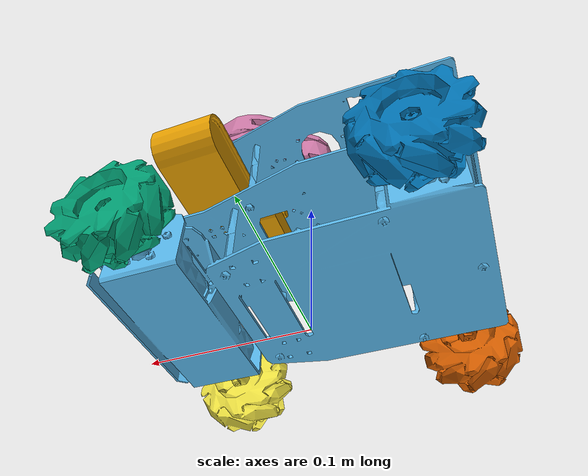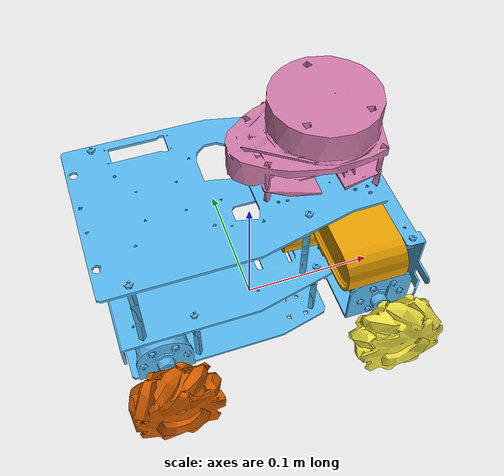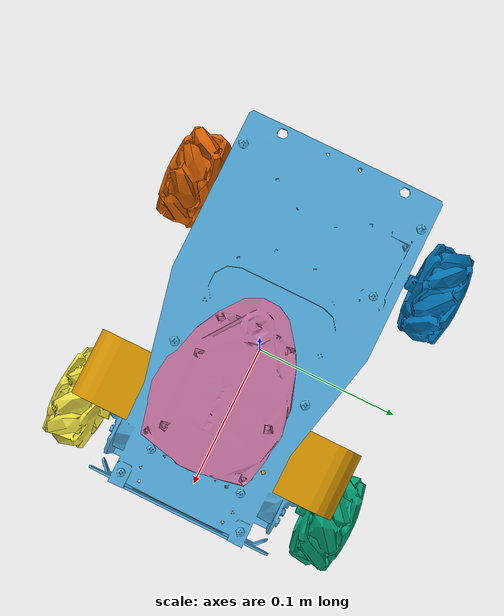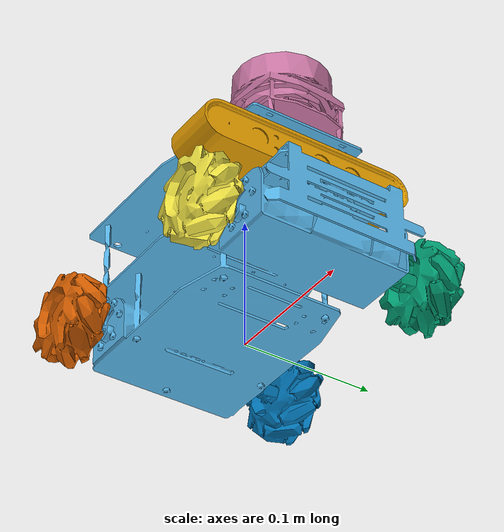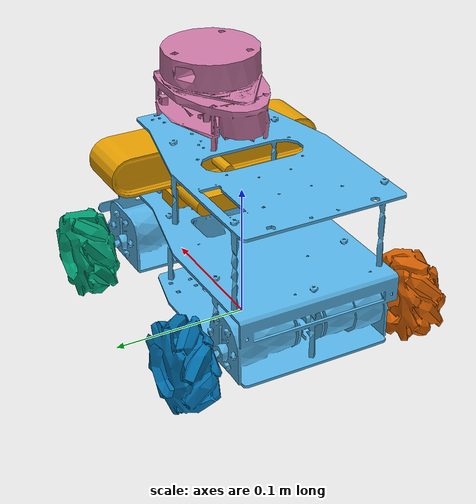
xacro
<?xml version="1.0"?>
<robot xmlns:xacro="http://www.ros.org/wiki/xacro" name="lab_robot">
  <xacro:arg name="prefix" default=""/>
  <xacro:arg name="camera" default="true"/>
  <xacro:arg name="camera_rate" default="15"/>
  <xacro:arg name="camera_width" default="848"/>
  <xacro:arg name="camera_height" default="480"/>
  <xacro:property name="p" value="$(arg prefix)"/>

  <xacro:property name="r" value="0.0375"/>
  <xacro:property name="lx" value="0.095"/>
  <xacro:property name="ly" value="0.085"/>
  <!-- Mounting geometry of the real robot (metres). base_link sits 71.4 mm above the floor (wheel axle + 38.9 mm). -->
  <xacro:property name="base_z" value="0.0714"/>
  <xacro:property name="mesh_z" value="-0.0064"/>      <!-- chassis meshes are drawn 6.4 mm below base_link -->
  <xacro:property name="wheel_x" value="0.080"/>
  <xacro:property name="wheel_y" value="0.0845"/>
  <xacro:property name="wheel_z" value="-0.0389"/>
  <xacro:property name="mesh" value="file://$(find tc70045e_sim)/meshes/lab_robot"/>

  <link name="${p}base_footprint"/>

  <link name="${p}base_link">
    <visual>
      <origin xyz="0 0 ${mesh_z}" rpy="0 0 0"/>
      <geometry><mesh filename="${mesh}/body.obj"/></geometry>
    </visual>
    <!-- One box around the decks, from 2 mm above the floor to the top deck (below the LiDAR's scan plane,
         so the LiDAR never sees its own robot) -->
    <collision>
      <origin xyz="0.003 0 -0.0019" rpy="0 0 0"/>
      <geometry><box size="0.228 0.14 0.135"/></geometry>
    </collision>
    <inertial>
      <origin xyz="0.003 0 -0.0019" rpy="0 0 0"/>
      <mass value="3.0"/>
      <inertia ixx="0.0094" ixy="0" ixz="0" iyy="0.0176" iyz="0" izz="0.0179"/>
    </inertial>
  </link>
  <joint name="${p}base_joint" type="fixed">
    <parent link="${p}base_footprint"/>
    <child link="${p}base_link"/>
    <origin xyz="0 0 ${base_z}" rpy="0 0 0"/>
  </joint>
  <gazebo reference="${p}base_link">
    <mu1>0.0</mu1>
    <mu2>0.0</mu2>
  </gazebo>

  <!-- Wheels are visual only: the planar_move plugin moves the body, so wheel contact cannot fight it -->
  <xacro:macro name="wheel" params="name x y">
    <link name="${p}wheel_${name}_link">
      <visual>
        <geometry><mesh filename="${mesh}/wheel_${name}.obj"/></geometry>
      </visual>
      <inertial>
        <mass value="0.1"/>
        <inertia ixx="0.0001" ixy="0" ixz="0" iyy="0.0001" iyz="0" izz="0.0001"/>
      </inertial>
    </link>
    <joint name="${p}wheel_${name}_joint" type="fixed">
      <parent link="${p}base_link"/>
      <child link="${p}wheel_${name}_link"/>
      <origin xyz="${x} ${y} ${wheel_z}" rpy="0 0 0"/>
    </joint>
  </xacro:macro>
  <xacro:wheel name="fl" x="${wheel_x}" y="${wheel_y}"/>
  <xacro:wheel name="fr" x="${wheel_x}" y="${-wheel_y}"/>
  <xacro:wheel name="rl" x="${-wheel_x}" y="${wheel_y}"/>
  <xacro:wheel name="rr" x="${-wheel_x}" y="${-wheel_y}"/>

  <!-- 2D LiDAR on the top deck: scan plane 18.1 cm above the floor -->
  <link name="${p}laser_link">
    <visual>
      <origin xyz="0 0 ${mesh_z}" rpy="0 0 ${pi}"/>
      <geometry><mesh filename="${mesh}/lidar.obj"/></geometry>
    </visual>
    <inertial>
      <mass value="0.17"/>
      <inertia ixx="0.0001" ixy="0" ixz="0" iyy="0.0001" iyz="0" izz="0.0001"/>
    </inertial>
  </link>
  <joint name="${p}laser_joint" type="fixed">
    <parent link="${p}base_link"/>
    <child link="${p}laser_link"/>
    <origin xyz="0.043 0 0.110" rpy="0 0 0"/>
  </joint>
  <gazebo reference="${p}laser_link">
    <sensor type="ray" name="lidar">
      <pose>0 0 0 0 0 0</pose>
      <visualize>false</visualize>
      <update_rate>5.5</update_rate>
      <ray>
        <scan>
          <horizontal>
            <samples>720</samples>
            <resolution>1</resolution>
            <min_angle>-3.14159265</min_angle>
            <max_angle>3.13322607</max_angle>
          </horizontal>
        </scan>
        <range>
          <min>0.15</min>
          <max>12.0</max>
          <resolution>0.001</resolution>
        </range>
        <noise>
          <type>gaussian</type>
          <mean>0.0</mean>
          <stddev>0.01</stddev>
        </noise>
      </ray>
      <plugin name="lidar_driver" filename="libgazebo_ros_ray_sensor.so">
        <ros>
          <remapping>~/out:=scan</remapping>
        </ros>
        <output_type>sensor_msgs/LaserScan</output_type>
        <frame_name>${p}laser_link</frame_name>
      </plugin>
    </sensor>
  </gazebo>

  <!-- 9-axis IMU (accelerometer + gyroscope here; the magnetometer is the magnetometer node) -->
  <link name="${p}imu_link">
    <inertial>
      <mass value="0.01"/>
      <inertia ixx="0.000001" ixy="0" ixz="0" iyy="0.000001" iyz="0" izz="0.000001"/>
    </inertial>
  </link>
  <joint name="${p}imu_joint" type="fixed">
    <parent link="${p}base_link"/>
    <child link="${p}imu_link"/>
    <origin xyz="0 0 0.01" rpy="0 0 0"/>
  </joint>
  <xacro:macro name="gyro_noise">
    <noise type="gaussian">
      <mean>0.0</mean><stddev>0.00185</stddev>
      <bias_mean>0.0</bias_mean><bias_stddev>0.00175</bias_stddev>
      <dynamic_bias_stddev>0.0000873</dynamic_bias_stddev>
      <dynamic_bias_correlation_time>300.0</dynamic_bias_correlation_time>
    </noise>
  </xacro:macro>
  <xacro:macro name="accel_noise">
    <noise type="gaussian">
      <mean>0.0</mean><stddev>0.016</stddev>
      <bias_mean>0.0</bias_mean><bias_stddev>0.05</bias_stddev>
      <dynamic_bias_stddev>0.002</dynamic_bias_stddev>
      <dynamic_bias_correlation_time>300.0</dynamic_bias_correlation_time>
    </noise>
  </xacro:macro>
  <gazebo reference="${p}imu_link">
    <sensor name="imu" type="imu">
      <always_on>true</always_on>
      <update_rate>100</update_rate>
      <imu>
        <angular_velocity>
          <x><xacro:gyro_noise/></x><y><xacro:gyro_noise/></y><z><xacro:gyro_noise/></z>
        </angular_velocity>
        <linear_acceleration>
          <x><xacro:accel_noise/></x><y><xacro:accel_noise/></y><z><xacro:accel_noise/></z>
        </linear_acceleration>
      </imu>
      <plugin name="imu_driver" filename="libgazebo_ros_imu_sensor.so">
        <ros>
          <remapping>~/out:=imu/data_raw</remapping>
        </ros>
        <frame_name>${p}imu_link</frame_name>
        <initial_orientation_as_reference>false</initial_orientation_as_reference>
      </plugin>
    </sensor>
  </gazebo>

  <!-- RGB-D camera with D455-like geometry: 848 x 480, 87 deg horizontal FoV (fx = 447 px).
       camera_width/camera_height (e.g. 424 x 240, fx = 223 px) render much faster on a laptop without a GPU. -->
  <link name="${p}camera_link">
    <visual>
      <origin xyz="0 0 ${mesh_z}" rpy="0 0 0"/>
      <geometry><mesh filename="${mesh}/camera.obj"/></geometry>
    </visual>
    <inertial>
      <mass value="0.39"/>
      <inertia ixx="0.0005" ixy="0" ixz="0" iyy="0.0001" iyz="0" izz="0.0005"/>
    </inertial>
  </link>
  <!-- Depth camera on its bracket on the middle deck: lens 10.9 cm above the floor, looking straight ahead -->
  <joint name="${p}camera_joint" type="fixed">
    <parent link="${p}base_link"/>
    <child link="${p}camera_link"/>
    <origin xyz="0.057 0 0.0376" rpy="0 0 0"/>
  </joint>
  <link name="${p}camera_color_optical_frame"/>
  <joint name="${p}camera_optical_joint" type="fixed">
    <parent link="${p}camera_link"/>
    <child link="${p}camera_color_optical_frame"/>
    <origin xyz="0 0 0" rpy="${-pi/2} 0 ${-pi/2}"/>
  </joint>
  <xacro:if value="$(arg camera)">
    <gazebo reference="${p}camera_link">
      <sensor name="rgbd" type="depth">
        <always_on>true</always_on>
        <update_rate>$(arg camera_rate)</update_rate>
        <camera>
          <horizontal_fov>1.5184</horizontal_fov>
          <image>
            <width>$(arg camera_width)</width>
            <height>$(arg camera_height)</height>
            <format>R8G8B8</format>
          </image>
          <clip>
            <near>0.1</near>
            <far>12.0</far>
          </clip>
        </camera>
        <plugin name="rgbd_driver" filename="libgazebo_ros_camera.so">
          <ros>
            <namespace>camera_sim</namespace>
          </ros>
          <camera_name>ideal</camera_name>
          <frame_name>${p}camera_color_optical_frame</frame_name>
          <hack_baseline>0.095</hack_baseline>
          <min_depth>0.1</min_depth>
          <max_depth>12.0</max_depth>
        </plugin>
      </sensor>
    </gazebo>
  </xacro:if>

  <gazebo>
    <plugin name="mecanum_base" filename="libgazebo_ros_planar_move.so">
      <ros>
        <remapping>odom:=ground_truth/odom</remapping>
      </ros>
      <update_rate>100</update_rate>
      <publish_rate>50</publish_rate>
      <publish_odom>true</publish_odom>
      <publish_odom_tf>false</publish_odom_tf>
      <odometry_frame>${p}world</odometry_frame>
      <robot_base_frame>${p}base_footprint</robot_base_frame>
      <covariance_x>0.0</covariance_x>
      <covariance_y>0.0</covariance_y>
      <covariance_yaw>0.0</covariance_yaw>
    </plugin>
  </gazebo>
</robot>
